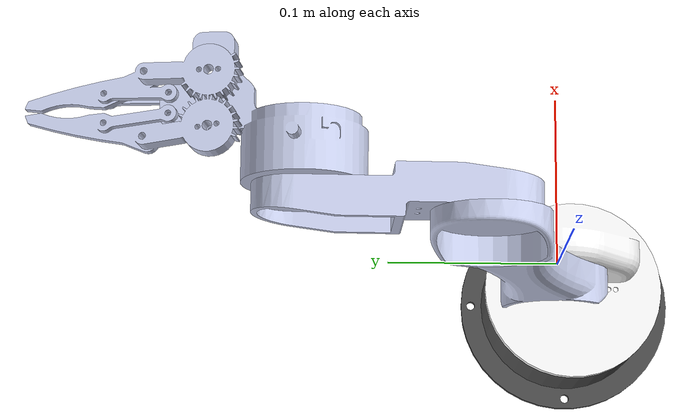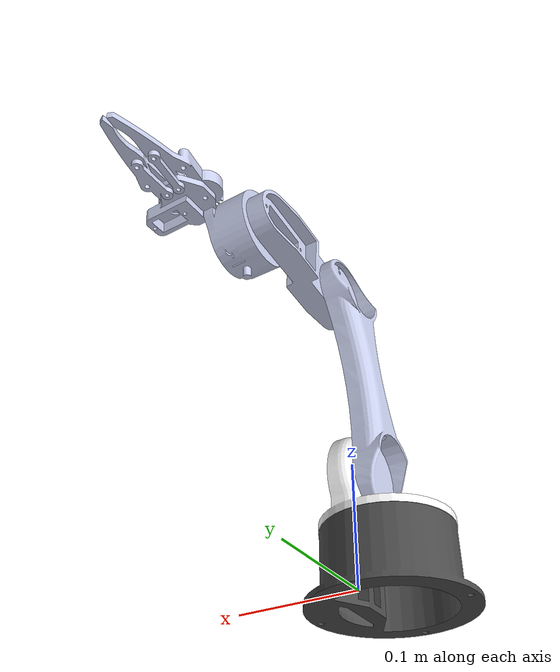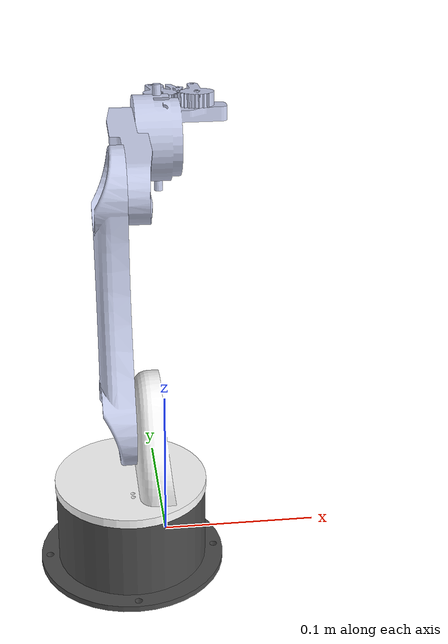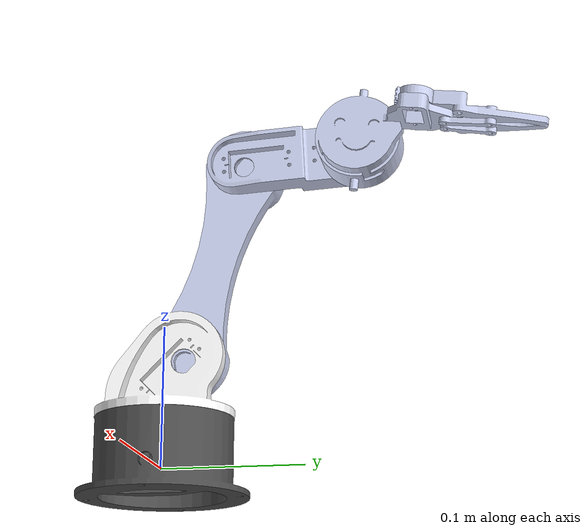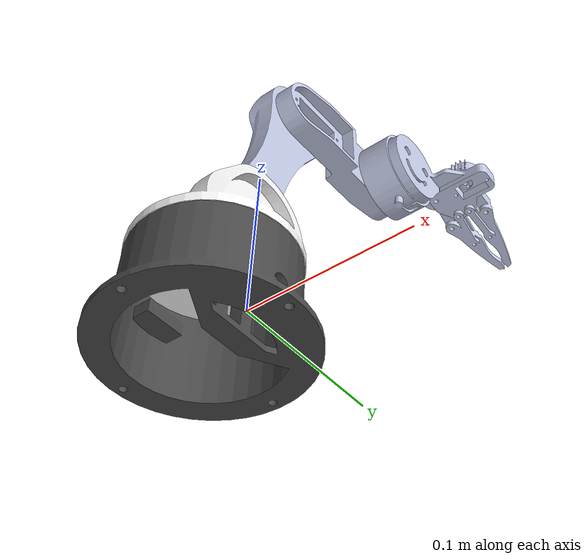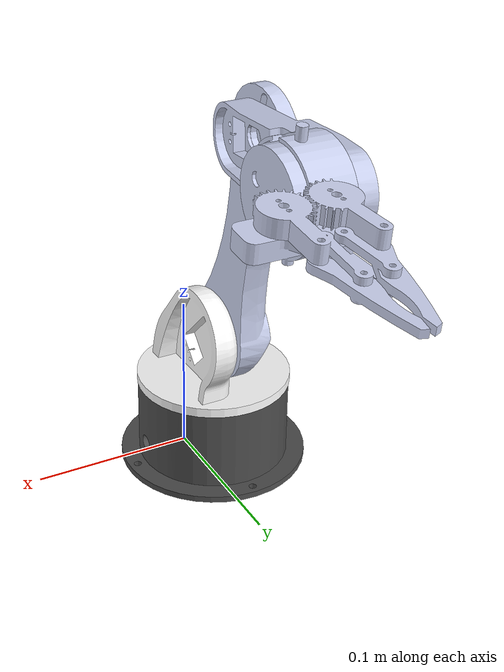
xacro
<?xml version="1.0"?>
<robot xmlns:xacro="http://www.ros.org/wiki/xacro" name="jarvis">
    <xacro:arg name="initial_positions_file" default="initial_positions.yaml" />

    <!-- Import jarvis urdf file -->
    <xacro:include filename="$(find jarvis_description)/urdf/jarvis.urdf.xacro" />

    <!-- Import control_xacro -->

</robot>

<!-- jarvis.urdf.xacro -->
<robot xmlns:xacro="http://www.ros.org/wiki/xacro" name="jarvis">

    <!-- Include Gazebo Parameters -->
    <xacro:include filename="$(find jarvis_description)/urdf/jarvis_gazebo.xacro" />

    <xacro:include filename="$(find jarvis_description)/urdf/jarvis_ros2_control.xacro" />

    <!-- Useful XACRO Variables (Properties) -->
    <xacro:property name="PI" value="3.14159265359" />
    <xacro:property name="effort" value="10.0" />
    <xacro:property name="velocity" value="1.0" />

    <!-- Useful Macros -->
    <xacro:macro name="default_inertial" params="mass">
        <inertial>
            <origin xyz="0 0 0" rpy="0 0 0"/>
            <mass value="${mass}" />
            <inertia ixx="1.0" ixy="0.0" ixz="0.0"
                     iyy="1.0" iyz="0.0"
                     izz="1.0" />
        </inertial>
    </xacro:macro>

    <!-- Links -->
    <link name="world"/>

    <link name="base_footprint"/>

    <link name="base_link">
        <xacro:default_inertial mass="0.0948677145004786"/>
        <visual>
            <origin xyz="0 0 0" rpy="0 0 0"/>
            <geometry>
                <mesh filename="package://jarvis_description/meshes/base_link.STL"/>
            </geometry>
            <material name="">
                <color rgba="0.298039215686275 0.298039215686275 0.298039215686275 1"/>
            </material>
        </visual>
        <collision>
            <origin xyz="0 0 0" rpy="0 0 0"/>
            <geometry>
                <mesh filename="package://jarvis_description/meshes/base_link.STL"/>
            </geometry>
        </collision>
    </link>

    <link name="link1">
        <xacro:default_inertial mass="0.0855344118691868"/>
        <visual>
            <origin xyz="0 0 0" rpy="0 0 0"/>
            <geometry>
                <mesh filename="package://jarvis_description/meshes/link1.STL"/>
            </geometry>
            <material name="">
                <color rgba="1 1 1 1"/>
            </material>
        </visual>
        <collision>
            <origin xyz="0 0 0" rpy="0 0 0"/>
            <geometry>
                <mesh filename="package://jarvis_description/meshes/link1.STL"/>
            </geometry>
        </collision>
    </link>

    <link name="link2">
        <xacro:default_inertial mass="0.097870598397348"/>
        <visual>
            <origin xyz="0 0 0" rpy="0 0 0"/>
            <geometry>
                <mesh filename="package://jarvis_description/meshes/link2.STL"/>
            </geometry>
            <material name="">
                <color rgba="0.792156862745098 0.819607843137255 0.933333333333333 1"/>
            </material>
        </visual>
        <collision>
            <origin xyz="0 0 0" rpy="0 0 0"/>
            <geometry>
                <mesh filename="package://jarvis_description/meshes/link2.STL"/>
            </geometry>
        </collision>
    </link>

    <link name="link3">
        <xacro:default_inertial mass="0.0452899921770384"/>
        <visual>
            <origin xyz="0 0 0" rpy="0 0 0"/>
            <geometry>
                <mesh filename="package://jarvis_description/meshes/link3.STL"/>
            </geometry>
            <material name="">
                <color rgba="0.792156862745098 0.819607843137255 0.933333333333333 1"/>
            </material>
        </visual>
        <collision>
            <origin xyz="0 0 0" rpy="0 0 0"/>
            <geometry>
                <mesh filename="package://jarvis_description/meshes/link3.STL"/>
            </geometry>
        </collision>
    </link>

    <link name="link4">
        <xacro:default_inertial mass="0.0852291043276122"/>
        <visual>
            <origin xyz="0 0 0" rpy="0 0 0"/>
            <geometry>
                <mesh filename="package://jarvis_description/meshes/link4.STL"/>
            </geometry>
            <material name="">
                <color rgba="0.792156862745098 0.819607843137255 0.933333333333333 1"/>
            </material>
        </visual>
        <collision>
            <origin xyz="0 0 0" rpy="0 0 0"/>
            <geometry>
                <mesh filename="package://jarvis_description/meshes/link4.STL"/>
            </geometry>
        </collision>
    </link>

    <link name="link5">
        <xacro:default_inertial mass="0.0212623199107251"/>
        <visual>
            <origin xyz="0 0 0" rpy="0 0 0"/>
            <geometry>
                <mesh filename="package://jarvis_description/meshes/link5.STL"/>
            </geometry>
            <material name="">
                <color rgba="0.792156862745098 0.819607843137255 0.933333333333333 1"/>
            </material>
        </visual>
        <collision>
            <origin xyz="0 0 0" rpy="0 0 0"/>
            <geometry>
                <mesh filename="package://jarvis_description/meshes/link5.STL"/>
            </geometry>
        </collision>
    </link>

    <!-- Joints -->
    <joint name="virtual_joint" type="fixed">
        <parent link="world"/>
        <child link="base_footprint"/>
        <origin xyz="0 0 0" rpy="0 0 0"/>
    </joint>

    <joint name="base_joint" type="fixed">
        <parent link="base_footprint"/>
        <child link="base_link"/>
        <origin xyz="0 0 0" rpy="0 0 0"/>
    </joint>

    <joint name="joint1" type="revolute">
        <parent link="base_link"/>
        <child link="link1"/>
        <origin xyz="-0.023241 -0.0044152 0.039553" rpy="1.5708 0 0"/>
        <axis xyz="0 -1 0"/>
        <limit lower="-${PI / 2}" upper="${PI / 2}" effort="${effort}" velocity="${velocity}"/>
    </joint>

    <joint name="joint2" type="revolute">
        <parent link="link1"/>
        <child link="link2"/>
        <origin xyz="0 0.04028 -0.01391" rpy="-1.5708 1.2851 -1.5708"/>
        <axis xyz="0 0 -1"/>
        <limit lower="-${PI / 2}" upper="${PI / 2}" effort="${effort}" velocity="${velocity}"/>
    </joint>

    <joint name="joint3" type="revolute">
        <parent link="link2"/>
        <child link="link3"/>
        <origin xyz="0 0.15 0" rpy="3.1416 0 -2.8059"/>
        <axis xyz="0 0 1"/>
        <limit lower="-${PI / 2}" upper="${PI / 2}" effort="${effort}" velocity="${velocity}"/>
    </joint>

    <joint name="joint4" type="revolute">
        <parent link="link3"/>
        <child link="link4"/>
        <origin xyz="-0.08818 0 -0.016" rpy="-3.1416 0 1.4092"/>
        <axis xyz="0 0 1"/>
        <limit lower="-${PI / 2}" upper="${PI / 2}" effort="${effort}" velocity="${velocity}"/>
    </joint>

    <!-- joint5 = gripper open/close -->
    <joint name="joint5" type="revolute">
        <parent link="link4"/>
        <child link="link5"/>
        <origin xyz="0.0093207 -0.047445 0.022999" rpy="1.5708 0.14449 -1.8952"/>
        <axis xyz="0 0 1"/>
        <limit lower="0" upper="${PI / 2}" effort="${effort}" velocity="${velocity}"/>
    </joint>

</robot>
